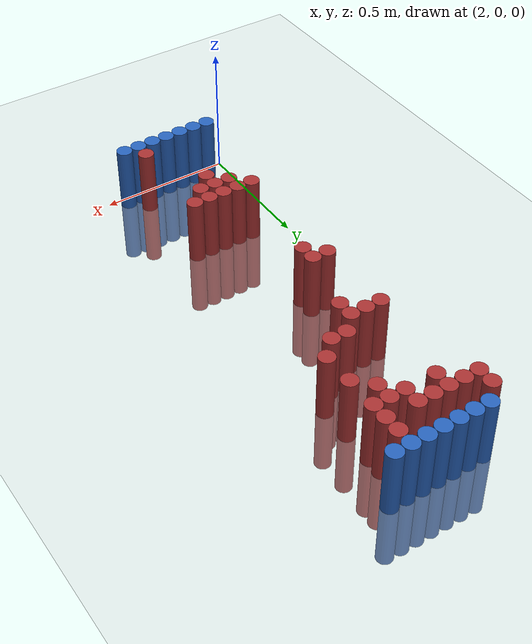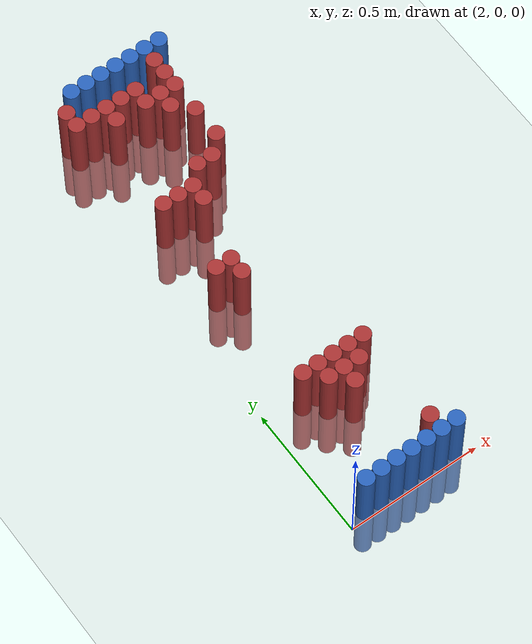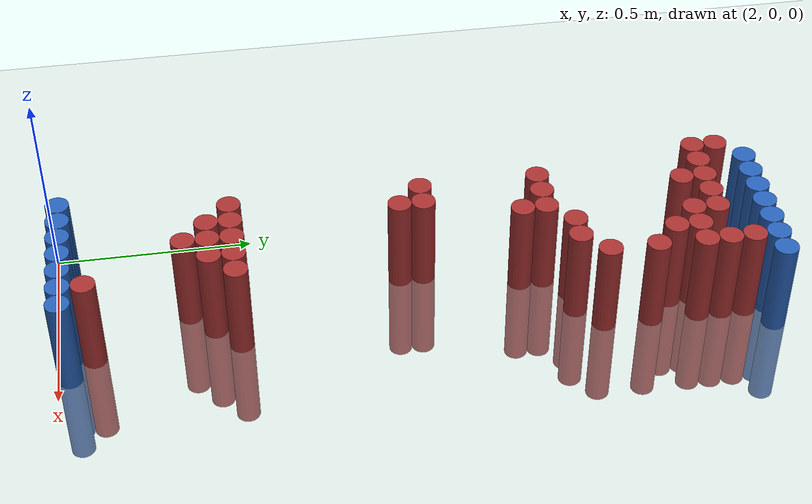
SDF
<sdf version="1.6">
 <world name="default">
  <model name="ground_plane">
   <static>1</static>
   <link name="link">
    <collision name="collision">
     <geometry><plane><normal>0 0 1</normal><size>100 100</size></plane></geometry>
     <surface><friction><ode><mu>100</mu><mu2>50</mu2></ode></friction></surface>
    </collision>
    <visual name="visual">
     <cast_shadows>0</cast_shadows>
     <geometry><plane><normal>0 0 1</normal><size>100 100</size></plane></geometry>
     <material>
      <script><uri>file://media/materials/scripts/gazebo.material</uri><name>Gazebo/Grey</name></script>
     </material>
    </visual>
   </link>
  </model>
  <model name="unit_cylinder_96">
   <static>1</static>
   <pose>2.130000 1.770000 0.000000 0.000000 0.000000 0.000000</pose>
   <link name="link">
    <inertial>
     <mass>1</mass>
     <inertia><ixx>0.145833</ixx><ixy>0</ixy><ixz>0</ixz><iyy>0.145833</iyy><iyz>0</iyz><izz>0.125</izz></inertia>
    </inertial>
    <collision name="collision">
     <geometry><cylinder><radius>0.030000</radius><length>0.5</length></cylinder></geometry>
    </collision>
    <visual name="visual">
     <geometry><cylinder><radius>0.030000</radius><length>0.5</length></cylinder></geometry>
     <material>
      <ambient>0.152000 0.379000 0.720000 1</ambient>
      <diffuse>0.152000 0.379000 0.720000 1</diffuse>
     </material>
     <material>
      <script><name>Gazebo/Grey</name><uri>file://media/materials/scripts/gazebo.material</uri></script>
     </material>
    </visual>
   </link>
  </model>
  <model name="unit_cylinder_97">
   <static>1</static>
   <pose>2.190000 1.770000 0.000000 0.000000 0.000000 0.000000</pose>
   <link name="link">
    <inertial>
     <mass>1</mass>
     <inertia><ixx>0.145833</ixx><ixy>0</ixy><ixz>0</ixz><iyy>0.145833</iyy><iyz>0</iyz><izz>0.125</izz></inertia>
    </inertial>
    <collision name="collision">
     <geometry><cylinder><radius>0.030000</radius><length>0.5</length></cylinder></geometry>
    </collision>
    <visual name="visual">
     <geometry><cylinder><radius>0.030000</radius><length>0.5</length></cylinder></geometry>
     <material>
      <ambient>0.152000 0.379000 0.720000 1</ambient>
      <diffuse>0.152000 0.379000 0.720000 1</diffuse>
     </material>
     <material>
      <script><name>Gazebo/Grey</name><uri>file://media/materials/scripts/gazebo.material</uri></script>
     </material>
    </visual>
   </link>
  </model>
  <model name="unit_cylinder_98">
   <static>1</static>
   <pose>2.250000 1.770000 0.000000 0.000000 0.000000 0.000000</pose>
   <link name="link">
    <inertial>
     <mass>1</mass>
     <inertia><ixx>0.145833</ixx><ixy>0</ixy><ixz>0</ixz><iyy>0.145833</iyy><iyz>0</iyz><izz>0.125</izz></inertia>
    </inertial>
    <collision name="collision">
     <geometry><cylinder><radius>0.030000</radius><length>0.5</length></cylinder></geometry>
    </collision>
    <visual name="visual">
     <geometry><cylinder><radius>0.030000</radius><length>0.5</length></cylinder></geometry>
     <material>
      <ambient>0.152000 0.379000 0.720000 1</ambient>
      <diffuse>0.152000 0.379000 0.720000 1</diffuse>
     </material>
     <material>
      <script><name>Gazebo/Grey</name><uri>file://media/materials/scripts/gazebo.material</uri></script>
     </material>
    </visual>
   </link>
  </model>
  <model name="unit_cylinder_99">
   <static>1</static>
   <pose>2.310000 1.770000 0.000000 0.000000 0.000000 0.000000</pose>
   <link name="link">
    <inertial>
     <mass>1</mass>
     <inertia><ixx>0.145833</ixx><ixy>0</ixy><ixz>0</ixz><iyy>0.145833</iyy><iyz>0</iyz><izz>0.125</izz></inertia>
    </inertial>
    <collision name="collision">
     <geometry><cylinder><radius>0.030000</radius><length>0.5</length></cylinder></geometry>
    </collision>
    <visual name="visual">
     <geometry><cylinder><radius>0.030000</radius><length>0.5</length></cylinder></geometry>
     <material>
      <ambient>0.152000 0.379000 0.720000 1</ambient>
      <diffuse>0.152000 0.379000 0.720000 1</diffuse>
     </material>
     <material>
      <script><name>Gazebo/Grey</name><uri>file://media/materials/scripts/gazebo.material</uri></script>
     </material>
    </visual>
   </link>
  </model>
  <model name="unit_cylinder_100">
   <static>1</static>
   <pose>2.370000 1.770000 0.000000 0.000000 0.000000 0.000000</pose>
   <link name="link">
    <inertial>
     <mass>1</mass>
     <inertia><ixx>0.145833</ixx><ixy>0</ixy><ixz>0</ixz><iyy>0.145833</iyy><iyz>0</iyz><izz>0.125</izz></inertia>
    </inertial>
    <collision name="collision">
     <geometry><cylinder><radius>0.030000</radius><length>0.5</length></cylinder></geometry>
    </collision>
    <visual name="visual">
     <geometry><cylinder><radius>0.030000</radius><length>0.5</length></cylinder></geometry>
     <material>
      <ambient>0.152000 0.379000 0.720000 1</ambient>
      <diffuse>0.152000 0.379000 0.720000 1</diffuse>
     </material>
     <material>
      <script><name>Gazebo/Grey</name><uri>file://media/materials/scripts/gazebo.material</uri></script>
     </material>
    </visual>
   </link>
  </model>
  <model name="unit_cylinder_101">
   <static>1</static>
   <pose>2.430000 1.770000 0.000000 0.000000 0.000000 0.000000</pose>
   <link name="link">
    <inertial>
     <mass>1</mass>
     <inertia><ixx>0.145833</ixx><ixy>0</ixy><ixz>0</ixz><iyy>0.145833</iyy><iyz>0</iyz><izz>0.125</izz></inertia>
    </inertial>
    <collision name="collision">
     <geometry><cylinder><radius>0.030000</radius><length>0.5</length></cylinder></geometry>
    </collision>
    <visual name="visual">
     <geometry><cylinder><radius>0.030000</radius><length>0.5</length></cylinder></geometry>
     <material>
      <ambient>0.152000 0.379000 0.720000 1</ambient>
      <diffuse>0.152000 0.379000 0.720000 1</diffuse>
     </material>
     <material>
      <script><name>Gazebo/Grey</name><uri>file://media/materials/scripts/gazebo.material</uri></script>
     </material>
    </visual>
   </link>
  </model>
  <model name="unit_cylinder_102">
   <static>1</static>
   <pose>2.490000 1.770000 0.000000 0.000000 0.000000 0.000000</pose>
   <link name="link">
    <inertial>
     <mass>1</mass>
     <inertia><ixx>0.145833</ixx><ixy>0</ixy><ixz>0</ixz><iyy>0.145833</iyy><iyz>0</iyz><izz>0.125</izz></inertia>
    </inertial>
    <collision name="collision">
     <geometry><cylinder><radius>0.030000</radius><length>0.5</length></cylinder></geometry>
    </collision>
    <visual name="visual">
     <geometry><cylinder><radius>0.030000</radius><length>0.5</length></cylinder></geometry>
     <material>
      <ambient>0.152000 0.379000 0.720000 1</ambient>
      <diffuse>0.152000 0.379000 0.720000 1</diffuse>
     </material>
     <material>
      <script><name>Gazebo/Grey</name><uri>file://media/materials/scripts/gazebo.material</uri></script>
     </material>
    </visual>
   </link>
  </model>
  <model name="unit_cylinder_125">
   <static>1</static>
   <pose>2.070000 1.710000 0.000000 0.000000 0.000000 0.000000</pose>
   <link name="link">
    <inertial>
     <mass>1</mass>
     <inertia><ixx>0.145833</ixx><ixy>0</ixy><ixz>0</ixz><iyy>0.145833</iyy><iyz>0</iyz><izz>0.125</izz></inertia>
    </inertial>
    <collision name="collision">
     <geometry><cylinder><radius>0.030000</radius><length>0.5</length></cylinder></geometry>
    </collision>
    <visual name="visual">
     <geometry><cylinder><radius>0.030000</radius><length>0.5</length></cylinder></geometry>
     <material>
      <ambient>0.648000 0.192000 0.192000 1</ambient>
      <diffuse>0.648000 0.192000 0.192000 1</diffuse>
     </material>
     <material>
      <script><name>Gazebo/Grey</name><uri>file://media/materials/scripts/gazebo.material</uri></script>
     </material>
    </visual>
   </link>
  </model>
  <model name="unit_cylinder_126">
   <static>1</static>
   <pose>2.430000 1.710000 0.000000 0.000000 0.000000 0.000000</pose>
   <link name="link">
    <inertial>
     <mass>1</mass>
     <inertia><ixx>0.145833</ixx><ixy>0</ixy><ixz>0</ixz><iyy>0.145833</iyy><iyz>0</iyz><izz>0.125</izz></inertia>
    </inertial>
    <collision name="collision">
     <geometry><cylinder><radius>0.030000</radius><length>0.5</length></cylinder></geometry>
    </collision>
    <visual name="visual">
     <geometry><cylinder><radius>0.030000</radius><length>0.5</length></cylinder></geometry>
     <material>
      <ambient>0.648000 0.192000 0.192000 1</ambient>
      <diffuse>0.648000 0.192000 0.192000 1</diffuse>
     </material>
     <material>
      <script><name>Gazebo/Grey</name><uri>file://media/materials/scripts/gazebo.material</uri></script>
     </material>
    </visual>
   </link>
  </model>
  <model name="unit_cylinder_137">
   <static>1</static>
   <pose>2.070000 1.650000 0.000000 0.000000 0.000000 0.000000</pose>
   <link name="link">
    <inertial>
     <mass>1</mass>
     <inertia><ixx>0.145833</ixx><ixy>0</ixy><ixz>0</ixz><iyy>0.145833</iyy><iyz>0</iyz><izz>0.125</izz></inertia>
    </inertial>
    <collision name="collision">
     <geometry><cylinder><radius>0.030000</radius><length>0.5</length></cylinder></geometry>
    </collision>
    <visual name="visual">
     <geometry><cylinder><radius>0.030000</radius><length>0.5</length></cylinder></geometry>
     <material>
      <ambient>0.648000 0.192000 0.192000 1</ambient>
      <diffuse>0.648000 0.192000 0.192000 1</diffuse>
     </material>
     <material>
      <script><name>Gazebo/Grey</name><uri>file://media/materials/scripts/gazebo.material</uri></script>
     </material>
    </visual>
   </link>
  </model>
  <model name="unit_cylinder_138">
   <static>1</static>
   <pose>2.130000 1.650000 0.000000 0.000000 0.000000 0.000000</pose>
   <link name="link">
    <inertial>
     <mass>1</mass>
     <inertia><ixx>0.145833</ixx><ixy>0</ixy><ixz>0</ixz><iyy>0.145833</iyy><iyz>0</iyz><izz>0.125</izz></inertia>
    </inertial>
    <collision name="collision">
     <geometry><cylinder><radius>0.030000</radius><length>0.5</length></cylinder></geometry>
    </collision>
    <visual name="visual">
     <geometry><cylinder><radius>0.030000</radius><length>0.5</length></cylinder></geometry>
     <material>
      <ambient>0.648000 0.192000 0.192000 1</ambient>
      <diffuse>0.648000 0.192000 0.192000 1</diffuse>
     </material>
     <material>
      <script><name>Gazebo/Grey</name><uri>file://media/materials/scripts/gazebo.material</uri></script>
     </material>
    </visual>
   </link>
  </model>
  <model name="unit_cylinder_139">
   <static>1</static>
   <pose>2.190000 1.650000 0.000000 0.000000 0.000000 0.000000</pose>
   <link name="link">
    <inertial>
     <mass>1</mass>
     <inertia><ixx>0.145833</ixx><ixy>0</ixy><ixz>0</ixz><iyy>0.145833</iyy><iyz>0</iyz><izz>0.125</izz></inertia>
    </inertial>
    <collision name="collision">
     <geometry><cylinder><radius>0.030000</radius><length>0.5</length></cylinder></geometry>
    </collision>
    <visual name="visual">
     <geometry><cylinder><radius>0.030000</radius><length>0.5</length></cylinder></geometry>
     <material>
      <ambient>0.648000 0.192000 0.192000 1</ambient>
      <diffuse>0.648000 0.192000 0.192000 1</diffuse>
     </material>
     <material>
      <script><name>Gazebo/Grey</name><uri>file://media/materials/scripts/gazebo.material</uri></script>
     </material>
    </visual>
   </link>
  </model>
  <model name="unit_cylinder_140">
   <static>1</static>
   <pose>2.250000 1.650000 0.000000 0.000000 0.000000 0.000000</pose>
   <link name="link">
    <inertial>
     <mass>1</mass>
     <inertia><ixx>0.145833</ixx><ixy>0</ixy><ixz>0</ixz><iyy>0.145833</iyy><iyz>0</iyz><izz>0.125</izz></inertia>
    </inertial>
    <collision name="collision">
     <geometry><cylinder><radius>0.030000</radius><length>0.5</length></cylinder></geometry>
    </collision>
    <visual name="visual">
     <geometry><cylinder><radius>0.030000</radius><length>0.5</length></cylinder></geometry>
     <material>
      <ambient>0.648000 0.192000 0.192000 1</ambient>
      <diffuse>0.648000 0.192000 0.192000 1</diffuse>
     </material>
     <material>
      <script><name>Gazebo/Grey</name><uri>file://media/materials/scripts/gazebo.material</uri></script>
     </material>
    </visual>
   </link>
  </model>
  <model name="unit_cylinder_141">
   <static>1</static>
   <pose>2.310000 1.650000 0.000000 0.000000 0.000000 0.000000</pose>
   <link name="link">
    <inertial>
     <mass>1</mass>
     <inertia><ixx>0.145833</ixx><ixy>0</ixy><ixz>0</ixz><iyy>0.145833</iyy><iyz>0</iyz><izz>0.125</izz></inertia>
    </inertial>
    <collision name="collision">
     <geometry><cylinder><radius>0.030000</radius><length>0.5</length></cylinder></geometry>
    </collision>
    <visual name="visual">
     <geometry><cylinder><radius>0.030000</radius><length>0.5</length></cylinder></geometry>
     <material>
      <ambient>0.648000 0.192000 0.192000 1</ambient>
      <diffuse>0.648000 0.192000 0.192000 1</diffuse>
     </material>
     <material>
      <script><name>Gazebo/Grey</name><uri>file://media/materials/scripts/gazebo.material</uri></script>
     </material>
    </visual>
   </link>
  </model>
  <model name="unit_cylinder_142">
   <static>1</static>
   <pose>2.430000 1.650000 0.000000 0.000000 0.000000 0.000000</pose>
   <link name="link">
    <inertial>
     <mass>1</mass>
     <inertia><ixx>0.145833</ixx><ixy>0</ixy><ixz>0</ixz><iyy>0.145833</iyy><iyz>0</iyz><izz>0.125</izz></inertia>
    </inertial>
    <collision name="collision">
     <geometry><cylinder><radius>0.030000</radius><length>0.5</length></cylinder></geometry>
    </collision>
    <visual name="visual">
     <geometry><cylinder><radius>0.030000</radius><length>0.5</length></cylinder></geometry>
     <material>
      <ambient>0.648000 0.192000 0.192000 1</ambient>
      <diffuse>0.648000 0.192000 0.192000 1</diffuse>
     </material>
     <material>
      <script><name>Gazebo/Grey</name><uri>file://media/materials/scripts/gazebo.material</uri></script>
     </material>
    </visual>
   </link>
  </model>
  <model name="unit_cylinder_144">
   <static>1</static>
   <pose>2.190000 1.590000 0.000000 0.000000 0.000000 0.000000</pose>
   <link name="link">
    <inertial>
     <mass>1</mass>
     <inertia><ixx>0.145833</ixx><ixy>0</ixy><ixz>0</ixz><iyy>0.145833</iyy><iyz>0</iyz><izz>0.125</izz></inertia>
    </inertial>
    <collision name="collision">
     <geometry><cylinder><radius>0.030000</radius><length>0.5</length></cylinder></geometry>
    </collision>
    <visual name="visual">
     <geometry><cylinder><radius>0.030000</radius><length>0.5</length></cylinder></geometry>
     <material>
      <ambient>0.648000 0.192000 0.192000 1</ambient>
      <diffuse>0.648000 0.192000 0.192000 1</diffuse>
     </material>
     <material>
      <script><name>Gazebo/Grey</name><uri>file://media/materials/scripts/gazebo.material</uri></script>
     </material>
    </visual>
   </link>
  </model>
  <model name="unit_cylinder_145">
   <static>1</static>
   <pose>2.310000 1.590000 0.000000 0.000000 0.000000 0.000000</pose>
   <link name="link">
    <inertial>
     <mass>1</mass>
     <inertia><ixx>0.145833</ixx><ixy>0</ixy><ixz>0</ixz><iyy>0.145833</iyy><iyz>0</iyz><izz>0.125</izz></inertia>
    </inertial>
    <collision name="collision">
     <geometry><cylinder><radius>0.030000</radius><length>0.5</length></cylinder></geometry>
    </collision>
    <visual name="visual">
     <geometry><cylinder><radius>0.030000</radius><length>0.5</length></cylinder></geometry>
     <material>
      <ambient>0.648000 0.192000 0.192000 1</ambient>
      <diffuse>0.648000 0.192000 0.192000 1</diffuse>
     </material>
     <material>
      <script><name>Gazebo/Grey</name><uri>file://media/materials/scripts/gazebo.material</uri></script>
     </material>
    </visual>
   </link>
  </model>
  <model name="unit_cylinder_146">
   <static>1</static>
   <pose>2.370000 1.590000 0.000000 0.000000 0.000000 0.000000</pose>
   <link name="link">
    <inertial>
     <mass>1</mass>
     <inertia><ixx>0.145833</ixx><ixy>0</ixy><ixz>0</ixz><iyy>0.145833</iyy><iyz>0</iyz><izz>0.125</izz></inertia>
    </inertial>
    <collision name="collision">
     <geometry><cylinder><radius>0.030000</radius><length>0.5</length></cylinder></geometry>
    </collision>
    <visual name="visual">
     <geometry><cylinder><radius>0.030000</radius><length>0.5</length></cylinder></geometry>
     <material>
      <ambient>0.648000 0.192000 0.192000 1</ambient>
      <diffuse>0.648000 0.192000 0.192000 1</diffuse>
     </material>
     <material>
      <script><name>Gazebo/Grey</name><uri>file://media/materials/scripts/gazebo.material</uri></script>
     </material>
    </visual>
   </link>
  </model>
  <model name="unit_cylinder_147">
   <static>1</static>
   <pose>2.430000 1.590000 0.000000 0.000000 0.000000 0.000000</pose>
   <link name="link">
    <inertial>
     <mass>1</mass>
     <inertia><ixx>0.145833</ixx><ixy>0</ixy><ixz>0</ixz><iyy>0.145833</iyy><iyz>0</iyz><izz>0.125</izz></inertia>
    </inertial>
    <collision name="collision">
     <geometry><cylinder><radius>0.030000</radius><length>0.5</length></cylinder></geometry>
    </collision>
    <visual name="visual">
     <geometry><cylinder><radius>0.030000</radius><length>0.5</length></cylinder></geometry>
     <material>
      <ambient>0.648000 0.192000 0.192000 1</ambient>
      <diffuse>0.648000 0.192000 0.192000 1</diffuse>
     </material>
     <material>
      <script><name>Gazebo/Grey</name><uri>file://media/materials/scripts/gazebo.material</uri></script>
     </material>
    </visual>
   </link>
  </model>
  <model name="unit_cylinder_150">
   <static>1</static>
   <pose>2.370000 1.530000 0.000000 0.000000 0.000000 0.000000</pose>
   <link name="link">
    <inertial>
     <mass>1</mass>
     <inertia><ixx>0.145833</ixx><ixy>0</ixy><ixz>0</ixz><iyy>0.145833</iyy><iyz>0</iyz><izz>0.125</izz></inertia>
    </inertial>
    <collision name="collision">
     <geometry><cylinder><radius>0.030000</radius><length>0.5</length></cylinder></geometry>
    </collision>
    <visual name="visual">
     <geometry><cylinder><radius>0.030000</radius><length>0.5</length></cylinder></geometry>
     <material>
      <ambient>0.648000 0.192000 0.192000 1</ambient>
      <diffuse>0.648000 0.192000 0.192000 1</diffuse>
     </material>
     <material>
      <script><name>Gazebo/Grey</name><uri>file://media/materials/scripts/gazebo.material</uri></script>
     </material>
    </visual>
   </link>
  </model>
  <model name="unit_cylinder_155">
   <static>1</static>
   <pose>2.430000 1.470000 0.000000 0.000000 0.000000 0.000000</pose>
   <link name="link">
    <inertial>
     <mass>1</mass>
     <inertia><ixx>0.145833</ixx><ixy>0</ixy><ixz>0</ixz><iyy>0.145833</iyy><iyz>0</iyz><izz>0.125</izz></inertia>
    </inertial>
    <collision name="collision">
     <geometry><cylinder><radius>0.030000</radius><length>0.5</length></cylinder></geometry>
    </collision>
    <visual name="visual">
     <geometry><cylinder><radius>0.030000</radius><length>0.5</length></cylinder></geometry>
     <material>
      <ambient>0.648000 0.192000 0.192000 1</ambient>
      <diffuse>0.648000 0.192000 0.192000 1</diffuse>
     </material>
     <material>
      <script><name>Gazebo/Grey</name><uri>file://media/materials/scripts/gazebo.material</uri></script>
     </material>
    </visual>
   </link>
  </model>
  <model name="unit_cylinder_163">
   <static>1</static>
   <pose>2.430000 1.350000 0.000000 0.000000 0.000000 0.000000</pose>
   <link name="link">
    <inertial>
     <mass>1</mass>
     <inertia><ixx>0.145833</ixx><ixy>0</ixy><ixz>0</ixz><iyy>0.145833</iyy><iyz>0</iyz><izz>0.125</izz></inertia>
    </inertial>
    <collision name="collision">
     <geometry><cylinder><radius>0.030000</radius><length>0.5</length></cylinder></geometry>
    </collision>
    <visual name="visual">
     <geometry><cylinder><radius>0.030000</radius><length>0.5</length></cylinder></geometry>
     <material>
      <ambient>0.648000 0.192000 0.192000 1</ambient>
      <diffuse>0.648000 0.192000 0.192000 1</diffuse>
     </material>
     <material>
      <script><name>Gazebo/Grey</name><uri>file://media/materials/scripts/gazebo.material</uri></script>
     </material>
    </visual>
   </link>
  </model>
  <model name="unit_cylinder_168">
   <static>1</static>
   <pose>2.310000 1.290000 0.000000 0.000000 0.000000 0.000000</pose>
   <link name="link">
    <inertial>
     <mass>1</mass>
     <inertia><ixx>0.145833</ixx><ixy>0</ixy><ixz>0</ixz><iyy>0.145833</iyy><iyz>0</iyz><izz>0.125</izz></inertia>
    </inertial>
    <collision name="collision">
     <geometry><cylinder><radius>0.030000</radius><length>0.5</length></cylinder></geometry>
    </collision>
    <visual name="visual">
     <geometry><cylinder><radius>0.030000</radius><length>0.5</length></cylinder></geometry>
     <material>
      <ambient>0.648000 0.192000 0.192000 1</ambient>
      <diffuse>0.648000 0.192000 0.192000 1</diffuse>
     </material>
     <material>
      <script><name>Gazebo/Grey</name><uri>file://media/materials/scripts/gazebo.material</uri></script>
     </material>
    </visual>
   </link>
  </model>
  <model name="unit_cylinder_169">
   <static>1</static>
   <pose>2.370000 1.290000 0.000000 0.000000 0.000000 0.000000</pose>
   <link name="link">
    <inertial>
     <mass>1</mass>
     <inertia><ixx>0.145833</ixx><ixy>0</ixy><ixz>0</ixz><iyy>0.145833</iyy><iyz>0</iyz><izz>0.125</izz></inertia>
    </inertial>
    <collision name="collision">
     <geometry><cylinder><radius>0.030000</radius><length>0.5</length></cylinder></geometry>
    </collision>
    <visual name="visual">
     <geometry><cylinder><radius>0.030000</radius><length>0.5</length></cylinder></geometry>
     <material>
      <ambient>0.648000 0.192000 0.192000 1</ambient>
      <diffuse>0.648000 0.192000 0.192000 1</diffuse>
     </material>
     <material>
      <script><name>Gazebo/Grey</name><uri>file://media/materials/scripts/gazebo.material</uri></script>
     </material>
    </visual>
   </link>
  </model>
  <model name="unit_cylinder_173">
   <static>1</static>
   <pose>2.130000 1.230000 0.000000 0.000000 0.000000 0.000000</pose>
   <link name="link">
    <inertial>
     <mass>1</mass>
     <inertia><ixx>0.145833</ixx><ixy>0</ixy><ixz>0</ixz><iyy>0.145833</iyy><iyz>0</iyz><izz>0.125</izz></inertia>
    </inertial>
    <collision name="collision">
     <geometry><cylinder><radius>0.030000</radius><length>0.5</length></cylinder></geometry>
    </collision>
    <visual name="visual">
     <geometry><cylinder><radius>0.030000</radius><length>0.5</length></cylinder></geometry>
     <material>
      <ambient>0.648000 0.192000 0.192000 1</ambient>
      <diffuse>0.648000 0.192000 0.192000 1</diffuse>
     </material>
     <material>
      <script><name>Gazebo/Grey</name><uri>file://media/materials/scripts/gazebo.material</uri></script>
     </material>
    </visual>
   </link>
  </model>
  <model name="unit_cylinder_174">
   <static>1</static>
   <pose>2.190000 1.230000 0.000000 0.000000 0.000000 0.000000</pose>
   <link name="link">
    <inertial>
     <mass>1</mass>
     <inertia><ixx>0.145833</ixx><ixy>0</ixy><ixz>0</ixz><iyy>0.145833</iyy><iyz>0</iyz><izz>0.125</izz></inertia>
    </inertial>
    <collision name="collision">
     <geometry><cylinder><radius>0.030000</radius><length>0.5</length></cylinder></geometry>
    </collision>
    <visual name="visual">
     <geometry><cylinder><radius>0.030000</radius><length>0.5</length></cylinder></geometry>
     <material>
      <ambient>0.648000 0.192000 0.192000 1</ambient>
      <diffuse>0.648000 0.192000 0.192000 1</diffuse>
     </material>
     <material>
      <script><name>Gazebo/Grey</name><uri>file://media/materials/scripts/gazebo.material</uri></script>
     </material>
    </visual>
   </link>
  </model>
  <model name="unit_cylinder_175">
   <static>1</static>
   <pose>2.250000 1.230000 0.000000 0.000000 0.000000 0.000000</pose>
   <link name="link">
    <inertial>
     <mass>1</mass>
     <inertia><ixx>0.145833</ixx><ixy>0</ixy><ixz>0</ixz><iyy>0.145833</iyy><iyz>0</iyz><izz>0.125</izz></inertia>
    </inertial>
    <collision name="collision">
     <geometry><cylinder><radius>0.030000</radius><length>0.5</length></cylinder></geometry>
    </collision>
    <visual name="visual">
     <geometry><cylinder><radius>0.030000</radius><length>0.5</length></cylinder></geometry>
     <material>
      <ambient>0.648000 0.192000 0.192000 1</ambient>
      <diffuse>0.648000 0.192000 0.192000 1</diffuse>
     </material>
     <material>
      <script><name>Gazebo/Grey</name><uri>file://media/materials/scripts/gazebo.material</uri></script>
     </material>
    </visual>
   </link>
  </model>
  <model name="unit_cylinder_176">
   <static>1</static>
   <pose>2.250000 1.170000 0.000000 0.000000 0.000000 0.000000</pose>
   <link name="link">
    <inertial>
     <mass>1</mass>
     <inertia><ixx>0.145833</ixx><ixy>0</ixy><ixz>0</ixz><iyy>0.145833</iyy><iyz>0</iyz><izz>0.125</izz></inertia>
    </inertial>
    <collision name="collision">
     <geometry><cylinder><radius>0.030000</radius><length>0.5</length></cylinder></geometry>
    </collision>
    <visual name="visual">
     <geometry><cylinder><radius>0.030000</radius><length>0.5</length></cylinder></geometry>
     <material>
      <ambient>0.648000 0.192000 0.192000 1</ambient>
      <diffuse>0.648000 0.192000 0.192000 1</diffuse>
     </material>
     <material>
      <script><name>Gazebo/Grey</name><uri>file://media/materials/scripts/gazebo.material</uri></script>
     </material>
    </visual>
   </link>
  </model>
  <model name="unit_cylinder_177">
   <static>1</static>
   <pose>2.130000 0.930000 0.000000 0.000000 0.000000 0.000000</pose>
   <link name="link">
    <inertial>
     <mass>1</mass>
     <inertia><ixx>0.145833</ixx><ixy>0</ixy><ixz>0</ixz><iyy>0.145833</iyy><iyz>0</iyz><izz>0.125</izz></inertia>
    </inertial>
    <collision name="collision">
     <geometry><cylinder><radius>0.030000</radius><length>0.5</length></cylinder></geometry>
    </collision>
    <visual name="visual">
     <geometry><cylinder><radius>0.030000</radius><length>0.5</length></cylinder></geometry>
     <material>
      <ambient>0.648000 0.192000 0.192000 1</ambient>
      <diffuse>0.648000 0.192000 0.192000 1</diffuse>
     </material>
     <material>
      <script><name>Gazebo/Grey</name><uri>file://media/materials/scripts/gazebo.material</uri></script>
     </material>
    </visual>
   </link>
  </model>
  <model name="unit_cylinder_178">
   <static>1</static>
   <pose>2.190000 0.930000 0.000000 0.000000 0.000000 0.000000</pose>
   <link name="link">
    <inertial>
     <mass>1</mass>
     <inertia><ixx>0.145833</ixx><ixy>0</ixy><ixz>0</ixz><iyy>0.145833</iyy><iyz>0</iyz><izz>0.125</izz></inertia>
    </inertial>
    <collision name="collision">
     <geometry><cylinder><radius>0.030000</radius><length>0.5</length></cylinder></geometry>
    </collision>
    <visual name="visual">
     <geometry><cylinder><radius>0.030000</radius><length>0.5</length></cylinder></geometry>
     <material>
      <ambient>0.648000 0.192000 0.192000 1</ambient>
      <diffuse>0.648000 0.192000 0.192000 1</diffuse>
     </material>
     <material>
      <script><name>Gazebo/Grey</name><uri>file://media/materials/scripts/gazebo.material</uri></script>
     </material>
    </visual>
   </link>
  </model>
  <model name="unit_cylinder_179">
   <static>1</static>
   <pose>2.190000 0.870000 0.000000 0.000000 0.000000 0.000000</pose>
   <link name="link">
    <inertial>
     <mass>1</mass>
     <inertia><ixx>0.145833</ixx><ixy>0</ixy><ixz>0</ixz><iyy>0.145833</iyy><iyz>0</iyz><izz>0.125</izz></inertia>
    </inertial>
    <collision name="collision">
     <geometry><cylinder><radius>0.030000</radius><length>0.5</length></cylinder></geometry>
    </collision>
    <visual name="visual">
     <geometry><cylinder><radius>0.030000</radius><length>0.5</length></cylinder></geometry>
     <material>
      <ambient>0.648000 0.192000 0.192000 1</ambient>
      <diffuse>0.648000 0.192000 0.192000 1</diffuse>
     </material>
     <material>
      <script><name>Gazebo/Grey</name><uri>file://media/materials/scripts/gazebo.material</uri></script>
     </material>
    </visual>
   </link>
  </model>
  <model name="unit_cylinder_207">
   <static>1</static>
   <pose>2.130000 0.450000 0.000000 0.000000 0.000000 0.000000</pose>
   <link name="link">
    <inertial>
     <mass>1</mass>
     <inertia><ixx>0.145833</ixx><ixy>0</ixy><ixz>0</ixz><iyy>0.145833</iyy><iyz>0</iyz><izz>0.125</izz></inertia>
    </inertial>
    <collision name="collision">
     <geometry><cylinder><radius>0.030000</radius><length>0.5</length></cylinder></geometry>
    </collision>
    <visual name="visual">
     <geometry><cylinder><radius>0.030000</radius><length>0.5</length></cylinder></geometry>
     <material>
      <ambient>0.648000 0.192000 0.192000 1</ambient>
      <diffuse>0.648000 0.192000 0.192000 1</diffuse>
     </material>
     <material>
      <script><name>Gazebo/Grey</name><uri>file://media/materials/scripts/gazebo.material</uri></script>
     </material>
    </visual>
   </link>
  </model>
  <model name="unit_cylinder_208">
   <static>1</static>
   <pose>2.190000 0.450000 0.000000 0.000000 0.000000 0.000000</pose>
   <link name="link">
    <inertial>
     <mass>1</mass>
     <inertia><ixx>0.145833</ixx><ixy>0</ixy><ixz>0</ixz><iyy>0.145833</iyy><iyz>0</iyz><izz>0.125</izz></inertia>
    </inertial>
    <collision name="collision">
     <geometry><cylinder><radius>0.030000</radius><length>0.5</length></cylinder></geometry>
    </collision>
    <visual name="visual">
     <geometry><cylinder><radius>0.030000</radius><length>0.5</length></cylinder></geometry>
     <material>
      <ambient>0.648000 0.192000 0.192000 1</ambient>
      <diffuse>0.648000 0.192000 0.192000 1</diffuse>
     </material>
     <material>
      <script><name>Gazebo/Grey</name><uri>file://media/materials/scripts/gazebo.material</uri></script>
     </material>
    </visual>
   </link>
  </model>
  <model name="unit_cylinder_209">
   <static>1</static>
   <pose>2.250000 0.450000 0.000000 0.000000 0.000000 0.000000</pose>
   <link name="link">
    <inertial>
     <mass>1</mass>
     <inertia><ixx>0.145833</ixx><ixy>0</ixy><ixz>0</ixz><iyy>0.145833</iyy><iyz>0</iyz><izz>0.125</izz></inertia>
    </inertial>
    <collision name="collision">
     <geometry><cylinder><radius>0.030000</radius><length>0.5</length></cylinder></geometry>
    </collision>
    <visual name="visual">
     <geometry><cylinder><radius>0.030000</radius><length>0.5</length></cylinder></geometry>
     <material>
      <ambient>0.648000 0.192000 0.192000 1</ambient>
      <diffuse>0.648000 0.192000 0.192000 1</diffuse>
     </material>
     <material>
      <script><name>Gazebo/Grey</name><uri>file://media/materials/scripts/gazebo.material</uri></script>
     </material>
    </visual>
   </link>
  </model>
  <model name="unit_cylinder_210">
   <static>1</static>
   <pose>2.310000 0.450000 0.000000 0.000000 0.000000 0.000000</pose>
   <link name="link">
    <inertial>
     <mass>1</mass>
     <inertia><ixx>0.145833</ixx><ixy>0</ixy><ixz>0</ixz><iyy>0.145833</iyy><iyz>0</iyz><izz>0.125</izz></inertia>
    </inertial>
    <collision name="collision">
     <geometry><cylinder><radius>0.030000</radius><length>0.5</length></cylinder></geometry>
    </collision>
    <visual name="visual">
     <geometry><cylinder><radius>0.030000</radius><length>0.5</length></cylinder></geometry>
     <material>
      <ambient>0.648000 0.192000 0.192000 1</ambient>
      <diffuse>0.648000 0.192000 0.192000 1</diffuse>
     </material>
     <material>
      <script><name>Gazebo/Grey</name><uri>file://media/materials/scripts/gazebo.material</uri></script>
     </material>
    </visual>
   </link>
  </model>
  <model name="unit_cylinder_211">
   <static>1</static>
   <pose>2.370000 0.450000 0.000000 0.000000 0.000000 0.000000</pose>
   <link name="link">
    <inertial>
     <mass>1</mass>
     <inertia><ixx>0.145833</ixx><ixy>0</ixy><ixz>0</ixz><iyy>0.145833</iyy><iyz>0</iyz><izz>0.125</izz></inertia>
    </inertial>
    <collision name="collision">
     <geometry><cylinder><radius>0.030000</radius><length>0.5</length></cylinder></geometry>
    </collision>
    <visual name="visual">
     <geometry><cylinder><radius>0.030000</radius><length>0.5</length></cylinder></geometry>
     <material>
      <ambient>0.648000 0.192000 0.192000 1</ambient>
      <diffuse>0.648000 0.192000 0.192000 1</diffuse>
     </material>
     <material>
      <script><name>Gazebo/Grey</name><uri>file://media/materials/scripts/gazebo.material</uri></script>
     </material>
    </visual>
   </link>
  </model>
  <model name="unit_cylinder_217">
   <static>1</static>
   <pose>2.190000 0.390000 0.000000 0.000000 0.000000 0.000000</pose>
   <link name="link">
    <inertial>
     <mass>1</mass>
     <inertia><ixx>0.145833</ixx><ixy>0</ixy><ixz>0</ixz><iyy>0.145833</iyy><iyz>0</iyz><izz>0.125</izz></inertia>
    </inertial>
    <collision name="collision">
     <geometry><cylinder><radius>0.030000</radius><length>0.5</length></cylinder></geometry>
    </collision>
    <visual name="visual">
     <geometry><cylinder><radius>0.030000</radius><length>0.5</length></cylinder></geometry>
     <material>
      <ambient>0.648000 0.192000 0.192000 1</ambient>
      <diffuse>0.648000 0.192000 0.192000 1</diffuse>
     </material>
     <material>
      <script><name>Gazebo/Grey</name><uri>file://media/materials/scripts/gazebo.material</uri></script>
     </material>
    </visual>
   </link>
  </model>
  <model name="unit_cylinder_218">
   <static>1</static>
   <pose>2.250000 0.390000 0.000000 0.000000 0.000000 0.000000</pose>
   <link name="link">
    <inertial>
     <mass>1</mass>
     <inertia><ixx>0.145833</ixx><ixy>0</ixy><ixz>0</ixz><iyy>0.145833</iyy><iyz>0</iyz><izz>0.125</izz></inertia>
    </inertial>
    <collision name="collision">
     <geometry><cylinder><radius>0.030000</radius><length>0.5</length></cylinder></geometry>
    </collision>
    <visual name="visual">
     <geometry><cylinder><radius>0.030000</radius><length>0.5</length></cylinder></geometry>
     <material>
      <ambient>0.648000 0.192000 0.192000 1</ambient>
      <diffuse>0.648000 0.192000 0.192000 1</diffuse>
     </material>
     <material>
      <script><name>Gazebo/Grey</name><uri>file://media/materials/scripts/gazebo.material</uri></script>
     </material>
    </visual>
   </link>
  </model>
  <model name="unit_cylinder_219">
   <static>1</static>
   <pose>2.310000 0.390000 0.000000 0.000000 0.000000 0.000000</pose>
   <link name="link">
    <inertial>
     <mass>1</mass>
     <inertia><ixx>0.145833</ixx><ixy>0</ixy><ixz>0</ixz><iyy>0.145833</iyy><iyz>0</iyz><izz>0.125</izz></inertia>
    </inertial>
    <collision name="collision">
     <geometry><cylinder><radius>0.030000</radius><length>0.5</length></cylinder></geometry>
    </collision>
    <visual name="visual">
     <geometry><cylinder><radius>0.030000</radius><length>0.5</length></cylinder></geometry>
     <material>
      <ambient>0.648000 0.192000 0.192000 1</ambient>
      <diffuse>0.648000 0.192000 0.192000 1</diffuse>
     </material>
     <material>
      <script><name>Gazebo/Grey</name><uri>file://media/materials/scripts/gazebo.material</uri></script>
     </material>
    </visual>
   </link>
  </model>
  <model name="unit_cylinder_225">
   <static>1</static>
   <pose>2.250000 0.330000 0.000000 0.000000 0.000000 0.000000</pose>
   <link name="link">
    <inertial>
     <mass>1</mass>
     <inertia><ixx>0.145833</ixx><ixy>0</ixy><ixz>0</ixz><iyy>0.145833</iyy><iyz>0</iyz><izz>0.125</izz></inertia>
    </inertial>
    <collision name="collision">
     <geometry><cylinder><radius>0.030000</radius><length>0.5</length></cylinder></geometry>
    </collision>
    <visual name="visual">
     <geometry><cylinder><radius>0.030000</radius><length>0.5</length></cylinder></geometry>
     <material>
      <ambient>0.648000 0.192000 0.192000 1</ambient>
      <diffuse>0.648000 0.192000 0.192000 1</diffuse>
     </material>
     <material>
      <script><name>Gazebo/Grey</name><uri>file://media/materials/scripts/gazebo.material</uri></script>
     </material>
    </visual>
   </link>
  </model>
  <model name="unit_cylinder_249">
   <static>1</static>
   <pose>2.370000 0.090000 0.000000 0.000000 0.000000 0.000000</pose>
   <link name="link">
    <inertial>
     <mass>1</mass>
     <inertia><ixx>0.145833</ixx><ixy>0</ixy><ixz>0</ixz><iyy>0.145833</iyy><iyz>0</iyz><izz>0.125</izz></inertia>
    </inertial>
    <collision name="collision">
     <geometry><cylinder><radius>0.030000</radius><length>0.5</length></cylinder></geometry>
    </collision>
    <visual name="visual">
     <geometry><cylinder><radius>0.030000</radius><length>0.5</length></cylinder></geometry>
     <material>
      <ambient>0.648000 0.192000 0.192000 1</ambient>
      <diffuse>0.648000 0.192000 0.192000 1</diffuse>
     </material>
     <material>
      <script><name>Gazebo/Grey</name><uri>file://media/materials/scripts/gazebo.material</uri></script>
     </material>
    </visual>
   </link>
  </model>
  <model name="unit_cylinder_257">
   <static>1</static>
   <pose>2.070000 0.030000 0.000000 0.000000 0.000000 0.000000</pose>
   <link name="link">
    <inertial>
     <mass>1</mass>
     <inertia><ixx>0.145833</ixx><ixy>0</ixy><ixz>0</ixz><iyy>0.145833</iyy><iyz>0</iyz><izz>0.125</izz></inertia>
    </inertial>
    <collision name="collision">
     <geometry><cylinder><radius>0.030000</radius><length>0.5</length></cylinder></geometry>
    </collision>
    <visual name="visual">
     <geometry><cylinder><radius>0.030000</radius><length>0.5</length></cylinder></geometry>
     <material>
      <ambient>0.152000 0.379000 0.720000 1</ambient>
      <diffuse>0.152000 0.379000 0.720000 1</diffuse>
     </material>
     <material>
      <script><name>Gazebo/Grey</name><uri>file://media/materials/scripts/gazebo.material</uri></script>
     </material>
    </visual>
   </link>
  </model>
  <model name="unit_cylinder_258">
   <static>1</static>
   <pose>2.130000 0.030000 0.000000 0.000000 0.000000 0.000000</pose>
   <link name="link">
    <inertial>
     <mass>1</mass>
     <inertia><ixx>0.145833</ixx><ixy>0</ixy><ixz>0</ixz><iyy>0.145833</iyy><iyz>0</iyz><izz>0.125</izz></inertia>
    </inertial>
    <collision name="collision">
     <geometry><cylinder><radius>0.030000</radius><length>0.5</length></cylinder></geometry>
    </collision>
    <visual name="visual">
     <geometry><cylinder><radius>0.030000</radius><length>0.5</length></cylinder></geometry>
     <material>
      <ambient>0.152000 0.379000 0.720000 1</ambient>
      <diffuse>0.152000 0.379000 0.720000 1</diffuse>
     </material>
     <material>
      <script><name>Gazebo/Grey</name><uri>file://media/materials/scripts/gazebo.material</uri></script>
     </material>
    </visual>
   </link>
  </model>
  <model name="unit_cylinder_259">
   <static>1</static>
   <pose>2.190000 0.030000 0.000000 0.000000 0.000000 0.000000</pose>
   <link name="link">
    <inertial>
     <mass>1</mass>
     <inertia><ixx>0.145833</ixx><ixy>0</ixy><ixz>0</ixz><iyy>0.145833</iyy><iyz>0</iyz><izz>0.125</izz></inertia>
    </inertial>
    <collision name="collision">
     <geometry><cylinder><radius>0.030000</radius><length>0.5</length></cylinder></geometry>
    </collision>
    <visual name="visual">
     <geometry><cylinder><radius>0.030000</radius><length>0.5</length></cylinder></geometry>
     <material>
      <ambient>0.152000 0.379000 0.720000 1</ambient>
      <diffuse>0.152000 0.379000 0.720000 1</diffuse>
     </material>
     <material>
      <script><name>Gazebo/Grey</name><uri>file://media/materials/scripts/gazebo.material</uri></script>
     </material>
    </visual>
   </link>
  </model>
  <model name="unit_cylinder_260">
   <static>1</static>
   <pose>2.250000 0.030000 0.000000 0.000000 0.000000 0.000000</pose>
   <link name="link">
    <inertial>
     <mass>1</mass>
     <inertia><ixx>0.145833</ixx><ixy>0</ixy><ixz>0</ixz><iyy>0.145833</iyy><iyz>0</iyz><izz>0.125</izz></inertia>
    </inertial>
    <collision name="collision">
     <geometry><cylinder><radius>0.030000</radius><length>0.5</length></cylinder></geometry>
    </collision>
    <visual name="visual">
     <geometry><cylinder><radius>0.030000</radius><length>0.5</length></cylinder></geometry>
     <material>
      <ambient>0.152000 0.379000 0.720000 1</ambient>
      <diffuse>0.152000 0.379000 0.720000 1</diffuse>
     </material>
     <material>
      <script><name>Gazebo/Grey</name><uri>file://media/materials/scripts/gazebo.material</uri></script>
     </material>
    </visual>
   </link>
  </model>
  <model name="unit_cylinder_261">
   <static>1</static>
   <pose>2.310000 0.030000 0.000000 0.000000 0.000000 0.000000</pose>
   <link name="link">
    <inertial>
     <mass>1</mass>
     <inertia><ixx>0.145833</ixx><ixy>0</ixy><ixz>0</ixz><iyy>0.145833</iyy><iyz>0</iyz><izz>0.125</izz></inertia>
    </inertial>
    <collision name="collision">
     <geometry><cylinder><radius>0.030000</radius><length>0.5</length></cylinder></geometry>
    </collision>
    <visual name="visual">
     <geometry><cylinder><radius>0.030000</radius><length>0.5</length></cylinder></geometry>
     <material>
      <ambient>0.152000 0.379000 0.720000 1</ambient>
      <diffuse>0.152000 0.379000 0.720000 1</diffuse>
     </material>
     <material>
      <script><name>Gazebo/Grey</name><uri>file://media/materials/scripts/gazebo.material</uri></script>
     </material>
    </visual>
   </link>
  </model>
  <model name="unit_cylinder_262">
   <static>1</static>
   <pose>2.370000 0.030000 0.000000 0.000000 0.000000 0.000000</pose>
   <link name="link">
    <inertial>
     <mass>1</mass>
     <inertia><ixx>0.145833</ixx><ixy>0</ixy><ixz>0</ixz><iyy>0.145833</iyy><iyz>0</iyz><izz>0.125</izz></inertia>
    </inertial>
    <collision name="collision">
     <geometry><cylinder><radius>0.030000</radius><length>0.5</length></cylinder></geometry>
    </collision>
    <visual name="visual">
     <geometry><cylinder><radius>0.030000</radius><length>0.5</length></cylinder></geometry>
     <material>
      <ambient>0.152000 0.379000 0.720000 1</ambient>
      <diffuse>0.152000 0.379000 0.720000 1</diffuse>
     </material>
     <material>
      <script><name>Gazebo/Grey</name><uri>file://media/materials/scripts/gazebo.material</uri></script>
     </material>
    </visual>
   </link>
  </model>
  <model name="unit_cylinder_263">
   <static>1</static>
   <pose>2.430000 0.030000 0.000000 0.000000 0.000000 0.000000</pose>
   <link name="link">
    <inertial>
     <mass>1</mass>
     <inertia><ixx>0.145833</ixx><ixy>0</ixy><ixz>0</ixz><iyy>0.145833</iyy><iyz>0</iyz><izz>0.125</izz></inertia>
    </inertial>
    <collision name="collision">
     <geometry><cylinder><radius>0.030000</radius><length>0.5</length></cylinder></geometry>
    </collision>
    <visual name="visual">
     <geometry><cylinder><radius>0.030000</radius><length>0.5</length></cylinder></geometry>
     <material>
      <ambient>0.152000 0.379000 0.720000 1</ambient>
      <diffuse>0.152000 0.379000 0.720000 1</diffuse>
     </material>
     <material>
      <script><name>Gazebo/Grey</name><uri>file://media/materials/scripts/gazebo.material</uri></script>
     </material>
    </visual>
   </link>
  </model>
 </world>
</sdf>
